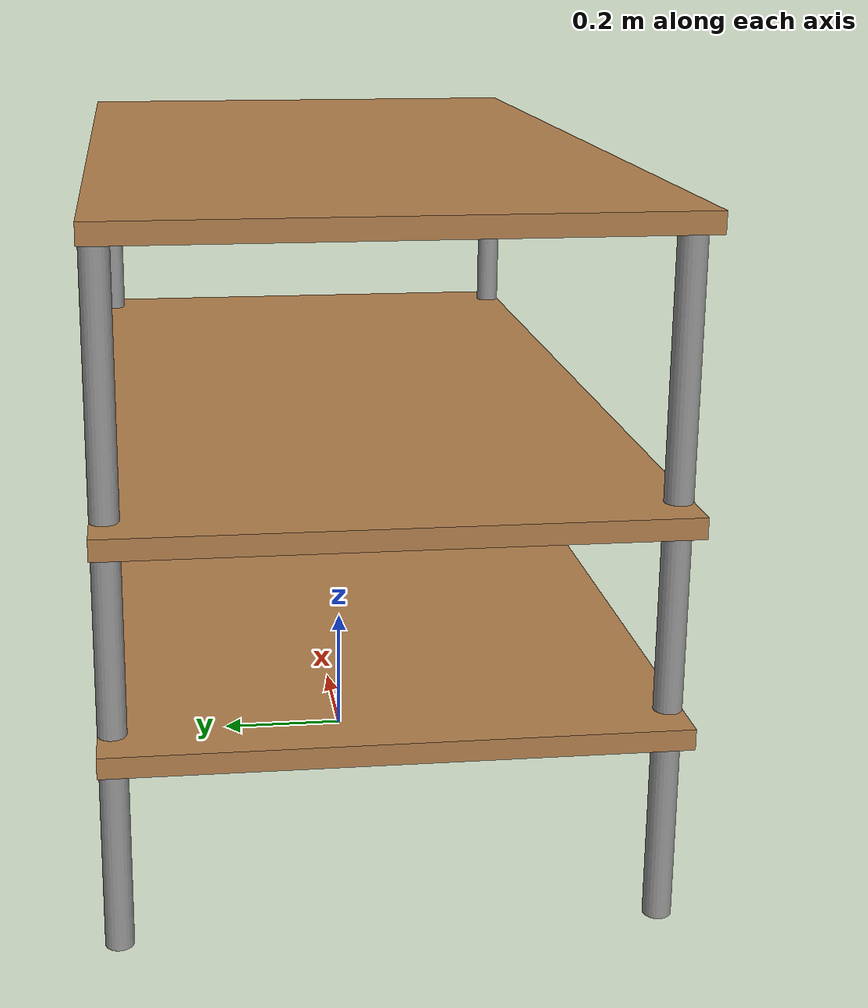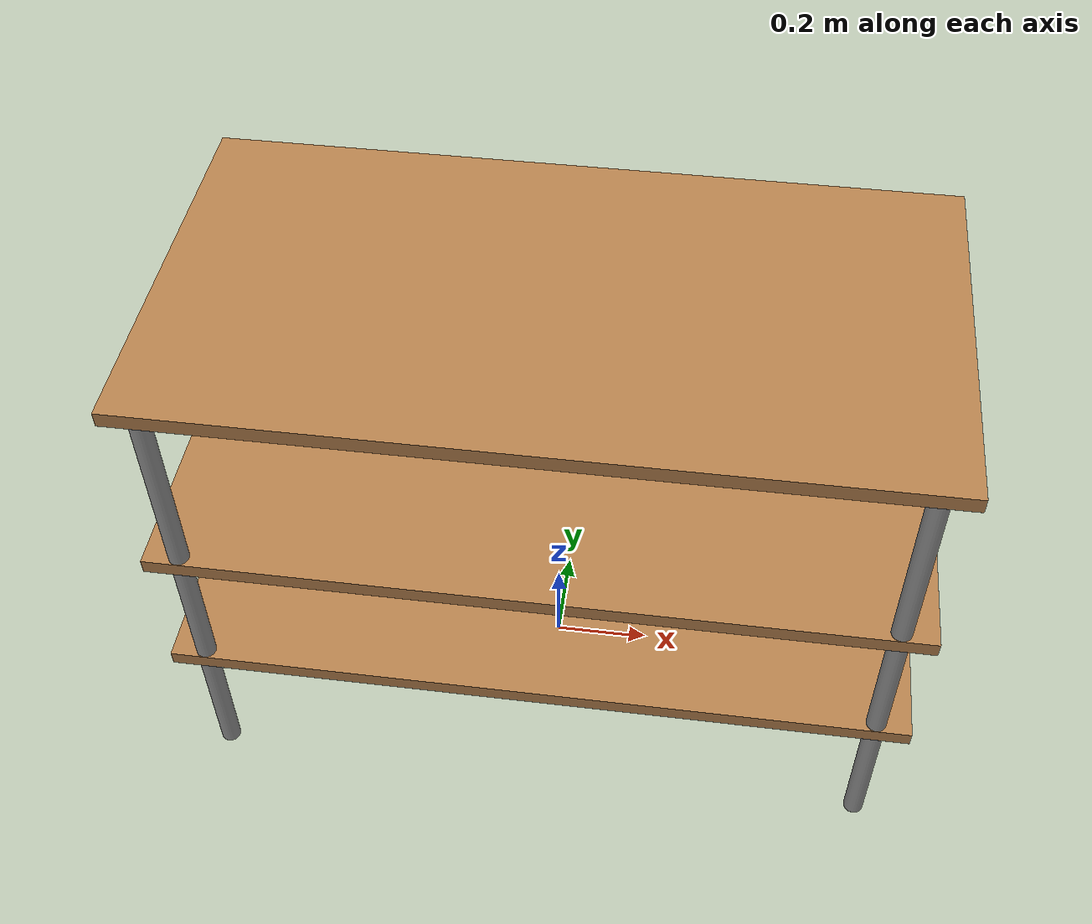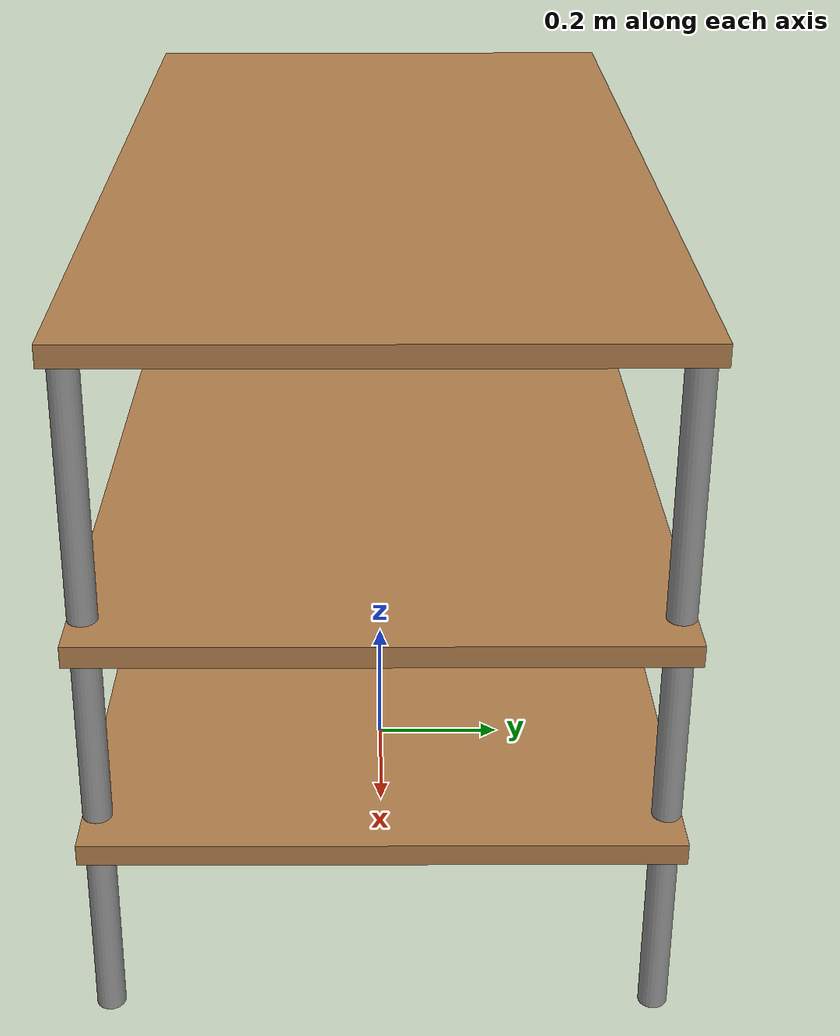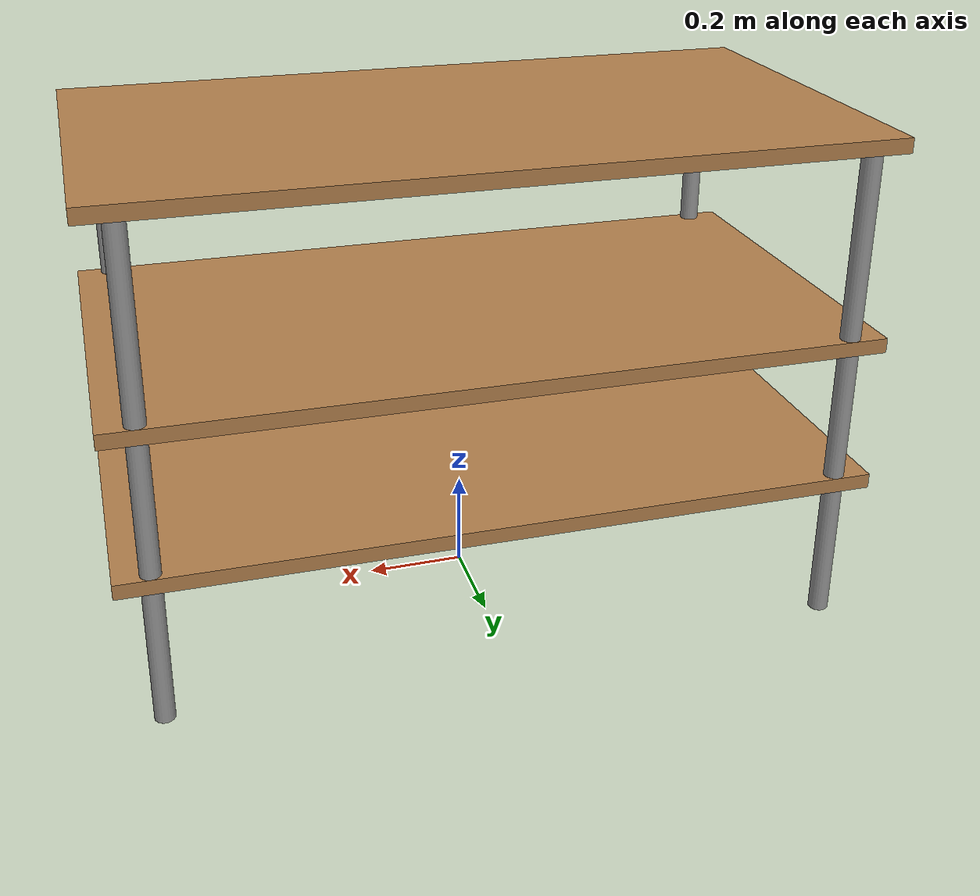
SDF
<?xml version="1.0" ?>
<sdf version="1.5">
  <model name="warehouse_pallet">
    <static>false</static>
    <link name="link">

      <collision name="surface1">
        <pose>0 0 0.3 0 0 0</pose>
        <geometry>
          <box>
            <size>1.5 0.8 0.03</size>
          </box>
        </geometry>
        <surface>
          <friction>
            <ode>
              <mu>Inf</mu>
              <mu2>Inf</mu2>
              <slip1>0.0</slip1>
              <slip2>0.0</slip2>
            </ode>
          </friction>
        </surface>
      </collision>
      <visual name="visual1">
        <pose>0 0 0.3 0 0 0</pose>
        <geometry>
          <box>
            <size>1.5 0.8 0.03</size>
          </box>
        </geometry>
        <material>
          <script>
            <uri>file://media/materials/scripts/gazebo.material</uri>
            <name>Gazebo/Wood</name>
          </script>
        </material>
      </visual>

      <collision name="surface2">
        <pose>0 0 0.6 0 0 0</pose>
        <geometry>
          <box>
            <size>1.5 0.8 0.03</size>
          </box>
        </geometry>
        <surface>
          <friction>
            <ode>
              <mu>2.5</mu>
              <mu2>2.5</mu2>
            </ode>
          </friction>
        </surface>
      </collision>
      <visual name="visual2">
        <pose>0 0 0.6 0 0 0</pose>
        <geometry>
          <box>
            <size>1.5 0.8 0.03</size>
          </box>
        </geometry>
        <material>
          <script>
            <uri>file://media/materials/scripts/gazebo.material</uri>
            <name>Gazebo/Wood</name>
          </script>
        </material>
      </visual>

      <collision name="surface3">
        <pose>0 0 1.0 0 0 0</pose>
        <geometry>
          <box>
            <size>1.5 0.8 0.03</size>
          </box>
        </geometry>
        <surface>
          <friction>
            <ode>
              <mu>2.5</mu>
              <mu2>2.5</mu2>
            </ode>
          </friction>
        </surface>
      </collision>
      <visual name="visual3">
        <pose>0 0 1.0 0 0 0</pose>
        <geometry>
          <box>
            <size>1.5 0.8 0.03</size>
          </box>
        </geometry>
        <material>
          <script>
            <uri>file://media/materials/scripts/gazebo.material</uri>
            <name>Gazebo/Wood</name>
          </script>
        </material>
      </visual>

      <collision name="front_left_leg">
        <pose>0.68 0.38 0.5 0 0 0</pose>
        <geometry>
          <cylinder>
            <radius>0.02</radius>
            <length>1.0</length>
          </cylinder>
        </geometry>
      </collision>
      <visual name="front_left_leg">
        <pose>0.68 0.38 0.5 0 0 0</pose>
        <geometry>
          <cylinder>
            <radius>0.02</radius>
            <length>1.0</length>
          </cylinder>
        </geometry>
        <material>
          <script>
            <uri>file://media/materials/scripts/gazebo.material</uri>
            <name>Gazebo/Grey</name>
          </script>
        </material>
      </visual>
      <collision name="front_right_leg">
        <pose>0.68 -0.38 0.5 0 0 0</pose>
        <geometry>
          <cylinder>
            <radius>0.02</radius>
            <length>1.0</length>
          </cylinder>
        </geometry>
      </collision>
      <visual name="front_right_leg">
        <pose>0.68 -0.38 0.5 0 0 0</pose>
        <geometry>
          <cylinder>
            <radius>0.02</radius>
            <length>1.0</length>
          </cylinder>
        </geometry>
        <material>
          <script>
            <uri>file://media/materials/scripts/gazebo.material</uri>
            <name>Gazebo/Grey</name>
          </script>
        </material>
      </visual>
      <collision name="back_right_leg">
        <pose>-0.68 -0.38 0.5 0 0 0</pose>
        <geometry>
          <cylinder>
            <radius>0.02</radius>
            <length>1.0</length>
          </cylinder>
        </geometry>
      </collision>
      <visual name="back_right_leg">
        <pose>-0.68 -0.38 0.5 0 0 0</pose>
        <geometry>
          <cylinder>
            <radius>0.02</radius>
            <length>1.0</length>
          </cylinder>
        </geometry>
        <material>
          <script>
            <uri>file://media/materials/scripts/gazebo.material</uri>
            <name>Gazebo/Grey</name>
          </script>
        </material>
      </visual>
      <collision name="back_left_leg">
        <pose>-0.68 0.38 0.5 0 0 0</pose>
        <geometry>
          <cylinder>
            <radius>0.02</radius>
            <length>1.0</length>
          </cylinder>
        </geometry>
      </collision>
      <visual name="back_left_leg">
        <pose>-0.68 0.38 0.5 0 0 0</pose>
        <geometry>
          <cylinder>
            <radius>0.02</radius>
            <length>1.0</length>
          </cylinder>
        </geometry>
        <material>
          <script>
            <uri>file://media/materials/scripts/gazebo.material</uri>
            <name>Gazebo/Grey</name>
          </script>
        </material>
      </visual>
    </link>
  </model>
</sdf>
